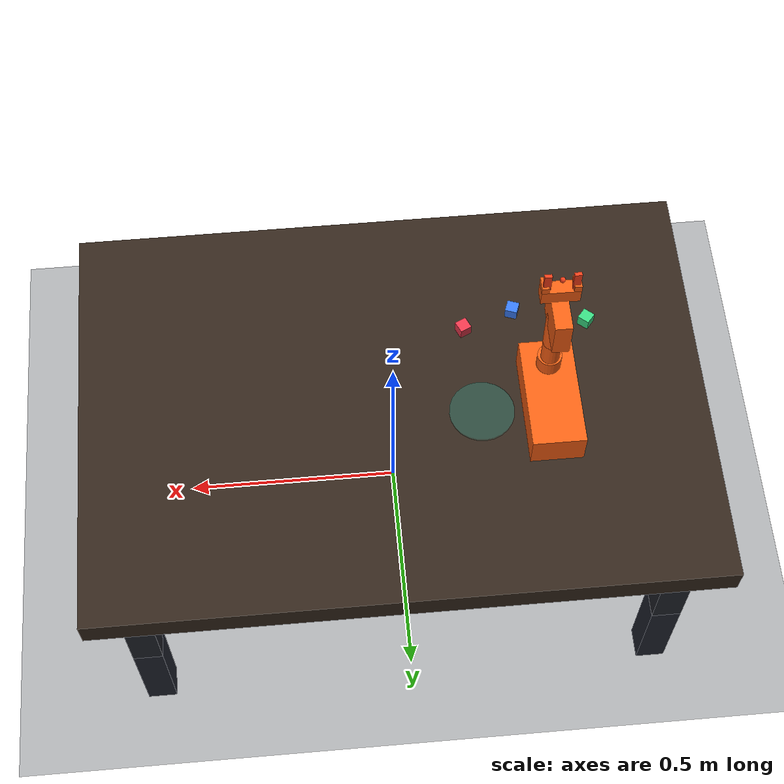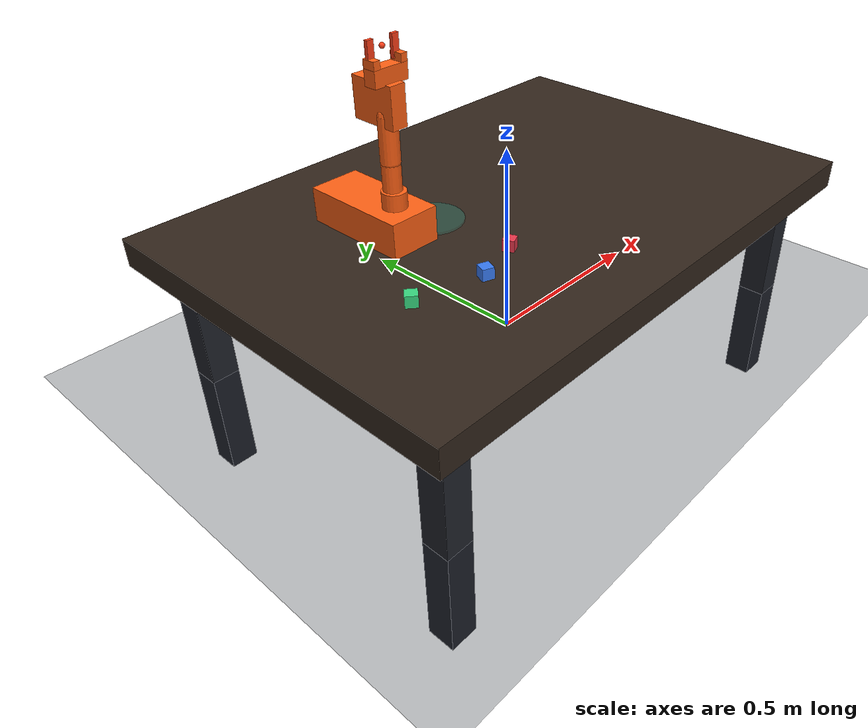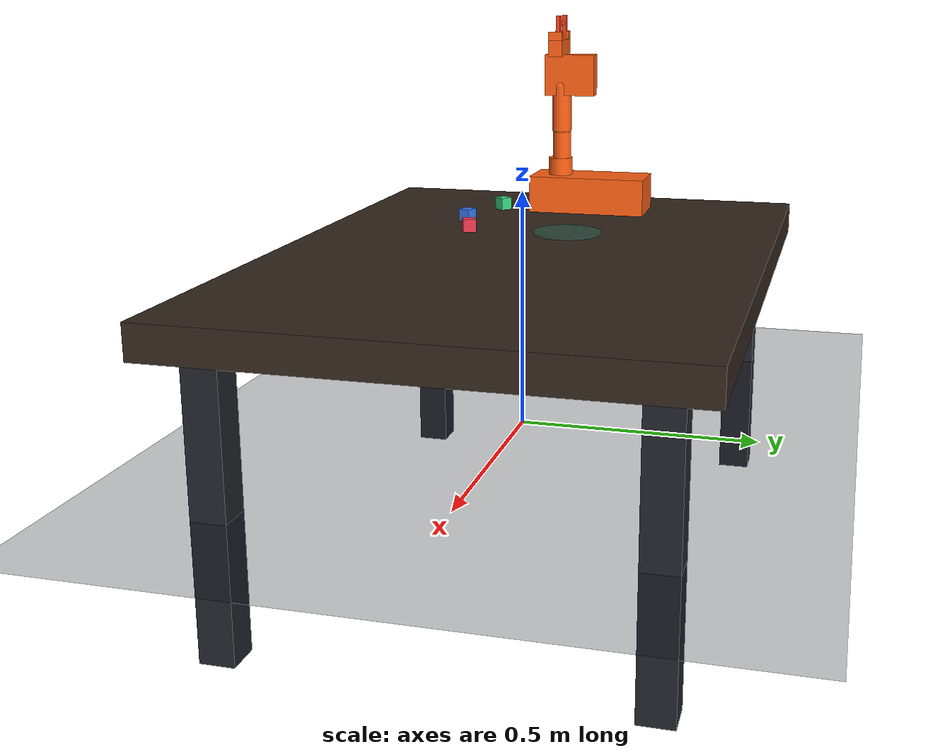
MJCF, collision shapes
<mujoco model="dofbot_lab">
  <compiler angle="radian" autolimits="true"/>
  <option timestep="0.01" gravity="0 0 -9.81" integrator="implicitfast"/>
  <visual>
    <global azimuth="135" elevation="-25" offwidth="720" offheight="480"/>
    <rgba haze="0.08 0.10 0.15 1"/>
  </visual>
  <default>
    <joint damping="1.4" armature="0.04"/>
    <geom friction="0.9 0.1 0.01" contype="1" conaffinity="1"/>
    <position kp="48" kv="7" forcerange="-30 30"/>
    <default class="robot_collision">
      <!-- Category 2 collides with the environment (category 1), but robot
           proxies do not collide with each other and create false contacts. -->
      <geom contype="2" conaffinity="1" group="3" mass="0"
            friction="0.9 0.1 0.01" rgba="1 0.38 0.08 0"/>
    </default>
  </default>
  <asset>
    <texture name="ground" type="2d" builtin="checker" rgb1="0.055 0.07 0.10" rgb2="0.09 0.11 0.15" width="512" height="512"/>
    <material name="ground" texture="ground" texrepeat="4 4" reflectance="0.15"/>
    <material name="metal" rgba="0.18 0.24 0.31 1" metallic="0.65" roughness="0.35"/>
    <material name="accent" rgba="0.12 0.80 0.72 1" metallic="0.2" roughness="0.3"/>
    <material name="target" rgba="0.12 0.80 0.72 0.22" metallic="0.1" roughness="0.45"/>
    <mesh name="dofbot_base" file="dofbot_description/meshes/base_link.STL"/>
    <mesh name="dofbot_link1" file="dofbot_description/meshes/link1.STL"/>
    <mesh name="dofbot_link2" file="dofbot_description/meshes/link2.STL"/>
    <mesh name="dofbot_link3" file="dofbot_description/meshes/link3.STL"/>
    <mesh name="dofbot_link4" file="dofbot_description/meshes/link4.STL"/>
    <mesh name="dofbot_link5_base" file="dofbot_description/meshes/link5_base.STL"/>
    <mesh name="dofbot_left_finger" file="dofbot_description/meshes/link5_left_finger.STL"/>
    <mesh name="dofbot_right_finger" file="dofbot_description/meshes/link5_right_finger.STL"/>
  </asset>
  <worldbody>
    <light pos="0 -1 2.5" dir="0 0 -1" diffuse="0.9 0.9 0.9"/>
    <light pos="-1 1 1.5" dir="0 -0.4 -1" diffuse="0.3 0.5 0.7"/>
    <geom name="floor" type="plane" size="2 2 0.1" material="ground"/>
    <body name="table" pos="0 0 0.34">
      <geom name="table_surface" type="box" size="0.72 0.50 0.035" rgba="0.20 0.15 0.11 1"/>
      <geom type="box" pos="0.62 0.40 -0.31" size="0.035 0.035 0.31" rgba="0.13 0.14 0.17 1"/>
      <geom type="box" pos="0.62 -0.40 -0.31" size="0.035 0.035 0.31" rgba="0.13 0.14 0.17 1"/>
      <geom type="box" pos="-0.62 0.40 -0.31" size="0.035 0.035 0.31" rgba="0.13 0.14 0.17 1"/>
      <geom type="box" pos="-0.62 -0.40 -0.31" size="0.035 0.035 0.31" rgba="0.13 0.14 0.17 1"/>
    </body>
    <geom name="target_zone" type="cylinder" pos="-0.20 0.05 0.379" size="0.075 0.003" material="target" contype="0" conaffinity="0"/>
    <body name="red_cube" pos="-0.18 -0.17 0.389" euler="0 0 0.436332">
      <freejoint name="red_cube_joint"/>
      <geom name="red_cube_geom" type="box" size="0.014 0.014 0.014" rgba="0.92 0.22 0.30 1" mass="0.025"/>
    </body>
    <body name="blue_cube" pos="-0.30 -0.21 0.389" euler="0 0 -0.349066">
      <freejoint name="blue_cube_joint"/>
      <geom name="blue_cube_geom" type="box" size="0.014 0.014 0.014" rgba="0.22 0.48 0.95 1" mass="0.025"/>
    </body>
    <body name="green_cube" pos="-0.47 -0.17 0.389" euler="0 0 0.872665">
      <freejoint name="green_cube_joint"/>
      <geom name="green_cube_geom" type="box" size="0.014 0.014 0.014" rgba="0.22 0.84 0.50 1" mass="0.025"/>
    </body>

    <body name="dofbot" pos="-0.35 0 0.405" euler="0 0 3.14159">
      <geom type="mesh" mesh="dofbot_base" rgba="0.28 0.31 0.34 1" contype="0" conaffinity="0"/>
      <geom name="arm_base_collision" class="robot_collision" type="box"
            pos="0 -0.070 0.03975" size="0.060 0.130 0.04025"/>
      <body name="dofbot_link1" pos="0 0 0.06605" quat="0.999985 -0.00540247 0 0">
        <joint name="base" type="hinge" axis="0 0 1" range="-1.5708 1.5708"/>
        <geom type="mesh" mesh="dofbot_link1" rgba="0.95 0.68 0.10 1" contype="0" conaffinity="0"/>
        <geom name="arm_link1_collision" class="robot_collision" type="cylinder"
              pos="0 0 0.0246" size="0.0275 0.0274"/>
        <body name="dofbot_link2" pos="0 -0.00031873 0.04145" quat="0.707105 0 0.707108 0">
          <joint name="shoulder" type="hinge" axis="0 0 1" range="-1.5708 1.5708"/>
          <geom type="mesh" mesh="dofbot_link2" rgba="0.31 0.34 0.37 1" contype="0" conaffinity="0"/>
          <geom name="arm_link2_collision" class="robot_collision" type="capsule"
                fromto="0.010 -0.003 0 -0.090 -0.003 0" size="0.0208"/>
          <body name="dofbot_link3" pos="-0.08285 0 0">
            <joint name="elbow" type="hinge" axis="0 0 1" range="-1.5708 1.5708"/>
            <geom type="mesh" mesh="dofbot_link3" rgba="0.95 0.68 0.10 1" contype="0" conaffinity="0"/>
            <geom name="arm_link3_collision" class="robot_collision" type="capsule"
                  fromto="0.010 -0.003 0 -0.090 -0.003 0" size="0.0215"/>
            <body name="dofbot_link4" pos="-0.08285 0 0" quat="0.999991 0 0 0.00415404">
              <joint name="wrist_pitch" type="hinge" axis="0 0 1" range="-1.5708 1.5708"/>
              <geom type="mesh" mesh="dofbot_link4" rgba="0.31 0.34 0.37 1" contype="0" conaffinity="0"/>
              <geom name="arm_link4_collision" class="robot_collision" type="box"
                    pos="-0.0315 -0.0236 -0.00065" size="0.0452 0.0560 0.0188"/>
              <body name="dofbot_link5" pos="-0.07385 -0.001 0" quat="0.707388 0 -0.706825 0">
                <joint name="wrist_roll" type="hinge" axis="0 0 1" range="-1.5708 3.1416"/>
                <geom type="mesh" mesh="dofbot_link5_base" rgba="0.92 0.92 0.92 1" contype="0" conaffinity="0"/>
                <geom name="arm_link5_collision" class="robot_collision" type="box"
                      pos="0.00002 0.00475 0.018" size="0.0419 0.01525 0.018"/>
                <geom name="arm_link5_left_collision" class="robot_collision" type="box"
                      pos="-0.034 0.00475 0.044" size="0.008 0.01525 0.009"/>
                <geom name="arm_link5_right_collision" class="robot_collision" type="box"
                      pos="0.034 0.00475 0.044" size="0.008 0.01525 0.009"/>
                <site name="tool_center" pos="0 -0.0015 0.070" size="0.006" rgba="1 0.25 0.10 1"/>
                <body name="left_finger">
                  <joint name="gripper_left" type="slide" axis="1 0 0" range="0 0.012" damping="0.4"/>
                  <geom type="mesh" mesh="dofbot_left_finger" rgba="0.92 0.92 0.92 1" contype="0" conaffinity="0"/>
                  <geom name="left_finger_collision" class="robot_collision" type="box" pos="-0.031 -0.0015 0.064" size="0.008 0.004 0.024" rgba="1 0.25 0.10 0.12" mass="0.008"/>
                </body>
                <body name="right_finger">
                  <joint name="gripper_right" type="slide" axis="-1 0 0" range="0 0.012" damping="0.4"/>
                  <geom type="mesh" mesh="dofbot_right_finger" rgba="0.92 0.92 0.92 1" contype="0" conaffinity="0"/>
                  <geom name="right_finger_collision" class="robot_collision" type="box" pos="0.031 -0.0015 0.064" size="0.008 0.004 0.024" rgba="1 0.25 0.10 0.12" mass="0.008"/>
                </body>
              </body>
            </body>
          </body>
        </body>
      </body>
    </body>
  </worldbody>
  <actuator>
    <position name="base_motor" joint="base" ctrlrange="-1.5708 1.5708"/>
    <position name="shoulder_motor" joint="shoulder" ctrlrange="-1.5708 1.5708"/>
    <position name="elbow_motor" joint="elbow" ctrlrange="-1.5708 1.5708"/>
    <position name="wrist_pitch_motor" joint="wrist_pitch" ctrlrange="-1.5708 1.5708"/>
    <position name="wrist_roll_motor" joint="wrist_roll" ctrlrange="-1.5708 3.1416"/>
    <position name="gripper_left_motor" joint="gripper_left" kp="80" kv="5" ctrlrange="0 0.012"/>
    <position name="gripper_right_motor" joint="gripper_right" kp="80" kv="5" ctrlrange="0 0.012"/>
  </actuator>
</mujoco>
